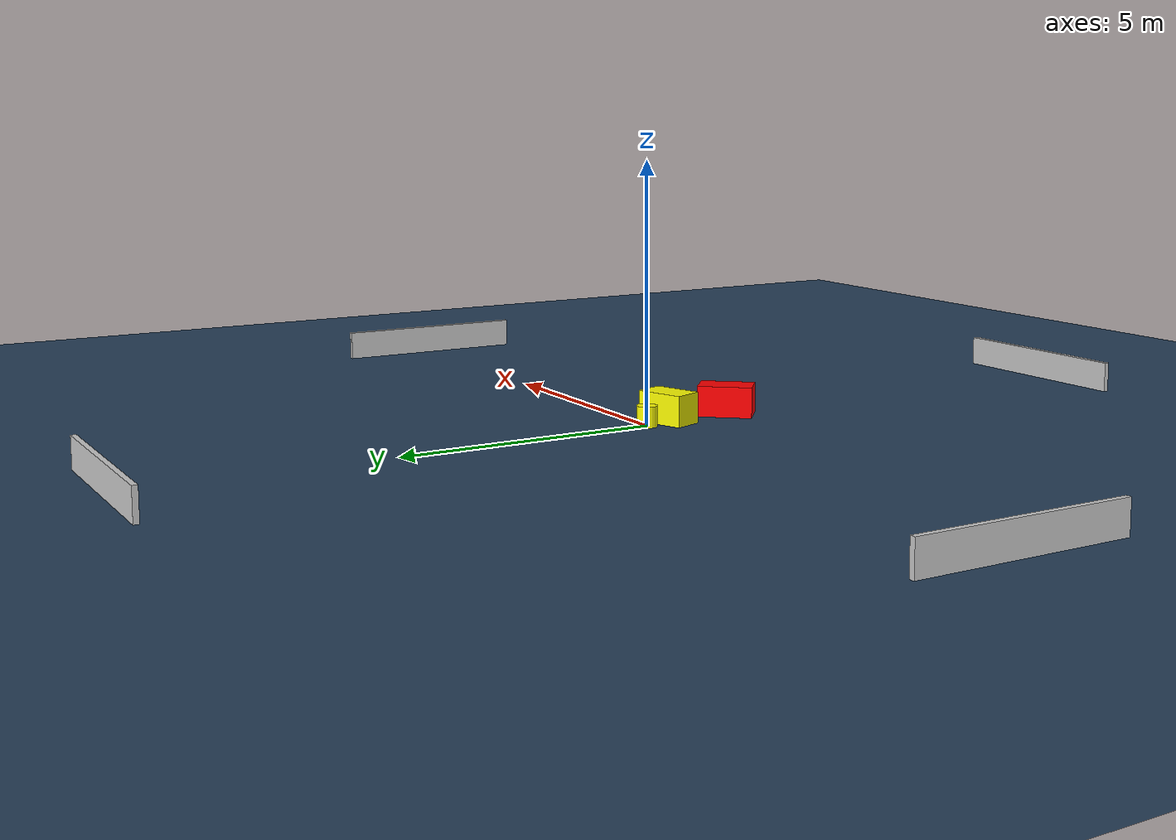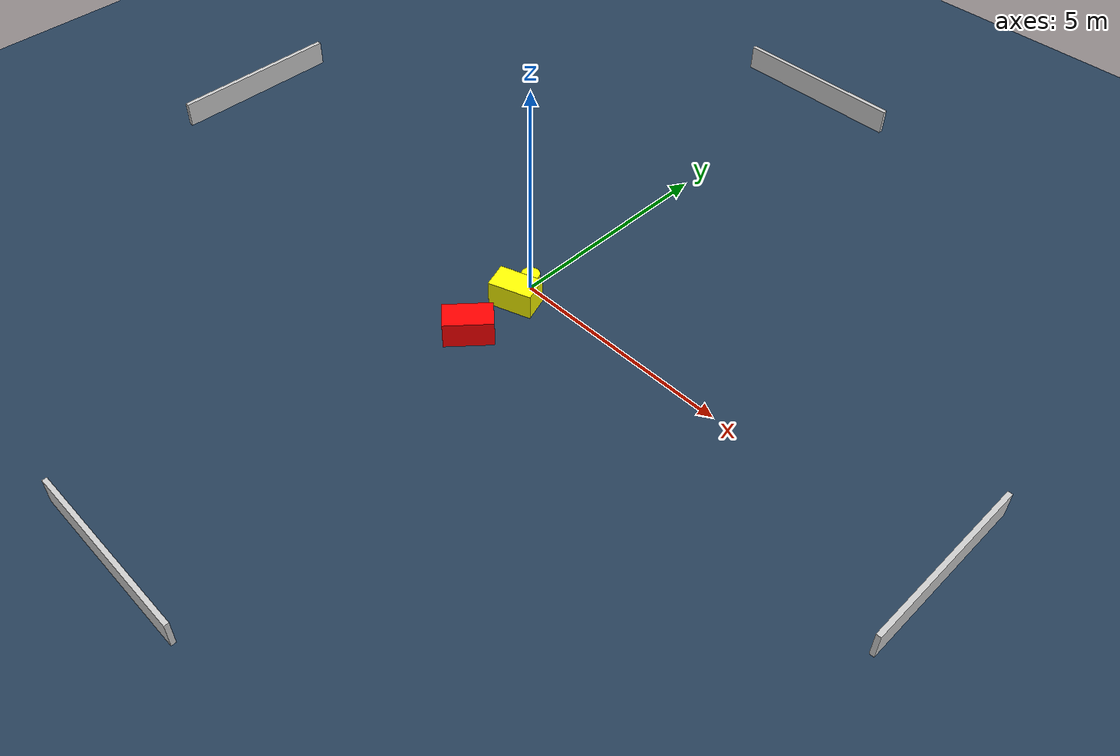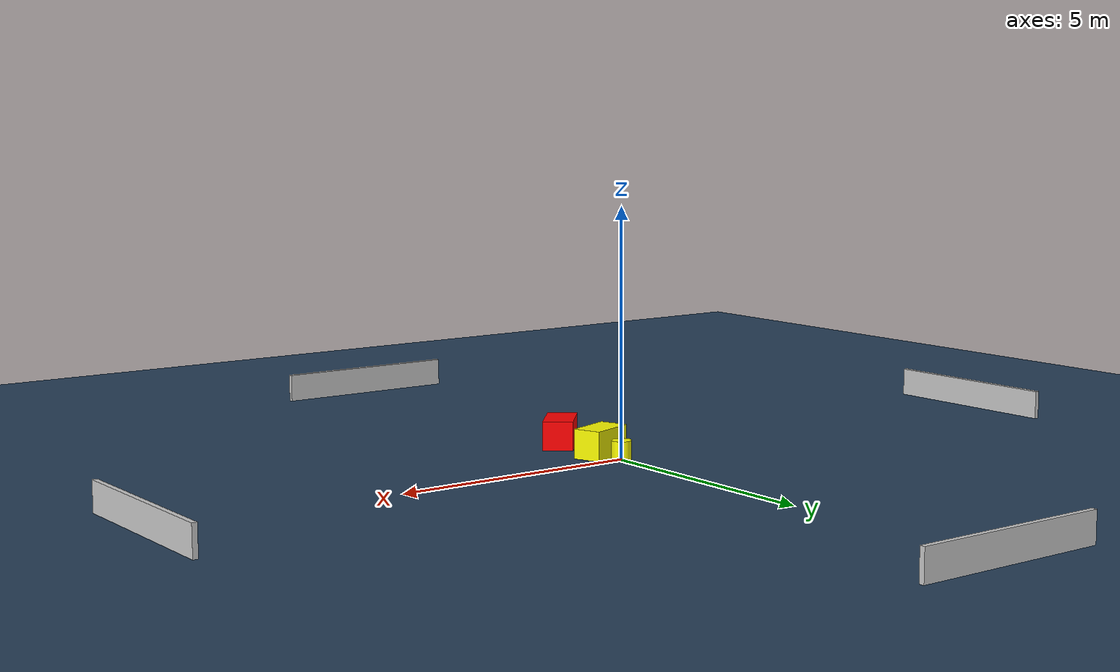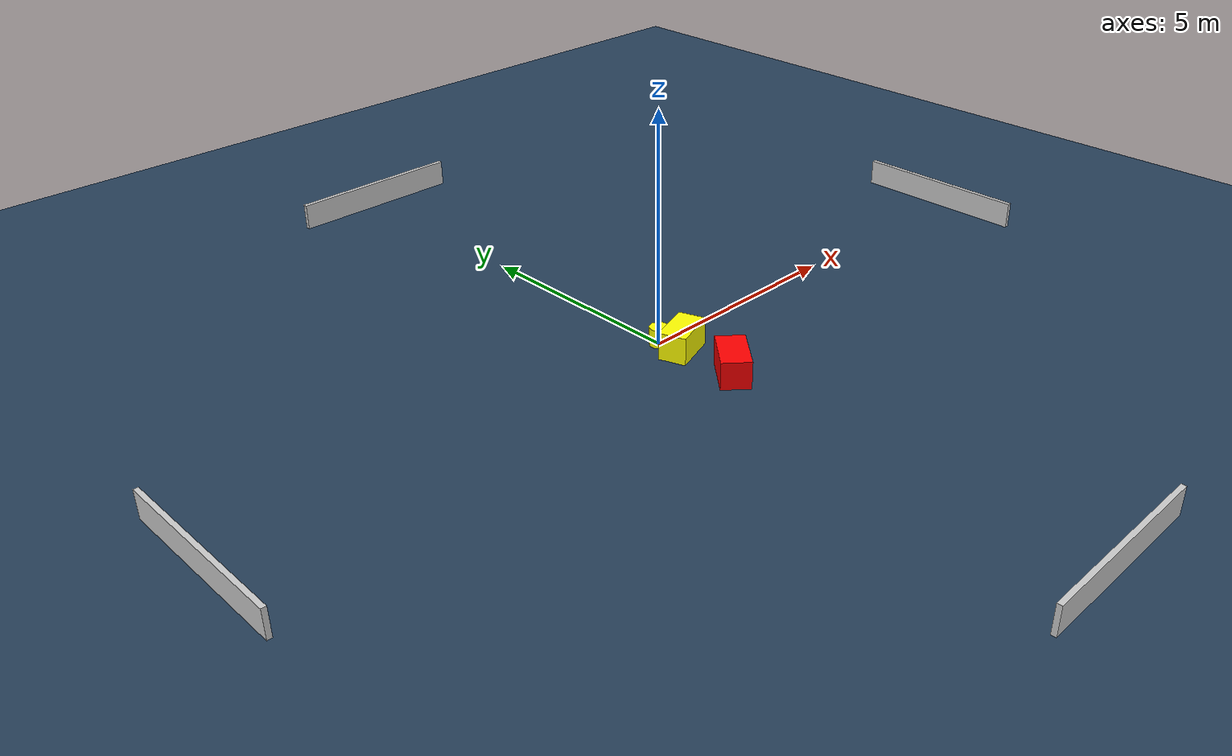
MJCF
<?xml version="1.0" ?>
<mujoco model="generated_environment">
  <option timestep="0.01" integrator="RK4" cone="elliptic"/>
  <default>
    <geom density="1"/>
  </default>
  <asset>
    <texture builtin="gradient" height="3072" name="skybox" rgb1="0.3 0.5 0.7" rgb2="0 0 0" type="skybox" width="512"/>
    <texture builtin="checker" height="300" name="groundplane" rgb1="0.2 0.3 0.4" rgb2="0.1 0.2 0.3" type="2d" width="300"/>
    <material name="groundplane" reflectance="0.2" texrepeat="5 5" texture="groundplane"/>
  </asset>
  <worldbody>
    <light dir="0 0 -1" directional="true" pos="0 0 1.5"/>
    <geom condim="3" friction="0.5 0.005 0.001" material="groundplane" name="floor" pos="0 0 0" size="0 0 0.05" type="plane"/>
    <body name="walls">
      <geom name="wall_1" condim="4" pos="-10.0 0.0 0.3" rgba="0.800000011920929 0.800000011920929 0.800000011920929 1.0" size="0.05 2.0 0.3" type="box"/>
      <geom name="wall_2" condim="4" pos="10.0 0.0 0.3" rgba="0.800000011920929 0.800000011920929 0.800000011920929 1.0" size="0.05 2.0 0.3" type="box"/>
      <geom name="wall_3" condim="4" pos="0.0 -10.0 0.3" rgba="0.800000011920929 0.800000011920929 0.800000011920929 1.0" size="2.0 0.05 0.3" type="box"/>
      <geom name="wall_4" condim="4" pos="0.0 10.0 0.3" rgba="0.800000011920929 0.800000011920929 0.800000011920929 1.0" size="2.0 0.05 0.3" type="box"/>
    </body>
    <body name="robot">
      <joint name="joint_x" type="slide" pos="0 0 0" axis="1 0 0"/>
      <joint name="joint_y" type="slide" pos="0 0 0" axis="0 1 0"/>
      <geom name="robot" type="cylinder" pos="0.0 0.0 0.2" size="0.2 0.2 0.0" mass="5.0" friction="1.0 0.005 0.0001" condim="4" rgba="1.0 1.0 0.0 1.0"/>
    </body>
    <body name="obstacle_1_movable">
      <geom name="obstacle_1_movable" condim="4" pos="0.11080167434567169 -0.5441105991494288 0.3" euler="0 0 289.3599581545592" friction="0.0 0.005 0.001" rgba="1.0 1.0 0.0 1.0" size="0.2924848202715952 0.485808767569053 0.3" type="box" mass="0.1"/>
      <joint type="free"/>
    </body>
    <body name="obstacle_2_static">
      <geom name="obstacle_2_static" condim="4" pos="0.1329337999540776 -1.8842112826984385 0.3" euler="0 0 229.0724989355139" friction="0.0 0.005 0.001" rgba="1.0 0.0 0.0 1.0" size="0.5276742076814134 0.307909215357015 0.3" type="box"/>
    </body>
  </worldbody>
  <actuator>
    <motor name="actuator_x" joint="joint_x" gear="1" ctrlrange="-1 1"/>
    <motor name="actuator_y" joint="joint_y" gear="1" ctrlrange="-1 1"/>
  </actuator>
</mujoco>
